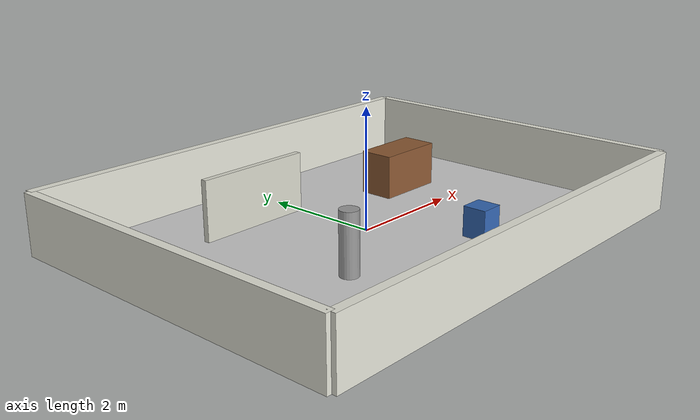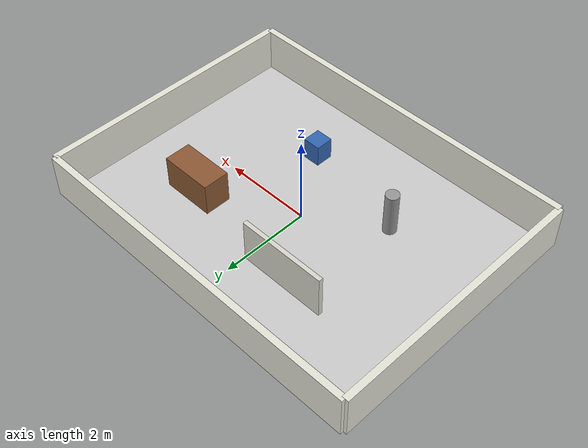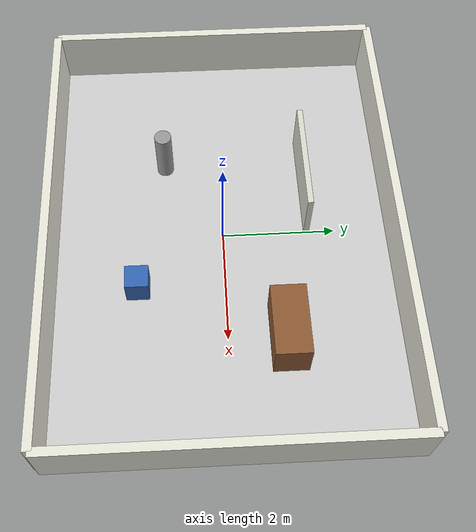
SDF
<?xml version="1.0"?>
<sdf version="1.6">
  <world name="johnny5_world">

    <!-- Physics engine tuned for balance robot dynamics -->
    <physics type="ode">
      <max_step_size>0.001</max_step_size>
      <real_time_factor>1.0</real_time_factor>
      <real_time_update_rate>1000</real_time_update_rate>
      <ode>
        <solver>
          <type>quick</type>
          <iters>150</iters>
          <sor>1.4</sor>
        </solver>
        <constraints>
          <cfm>0.00001</cfm>
          <erp>0.2</erp>
        </constraints>
      </ode>
    </physics>

    <!-- Lighting -->
    <include>
      <uri>model://sun</uri>
    </include>

    <!-- Ground plane -->
    <include>
      <uri>model://ground_plane</uri>
    </include>

    <!-- ==================== Indoor test environment ==================== -->
    <!-- A simple room with walls for SLAM and navigation testing.        -->
    <!-- ~8m x 6m room with a couple of interior obstacles.               -->

    <!-- Floor (visual only, ground_plane handles collision) -->
    <model name="floor">
      <static>true</static>
      <link name="link">
        <visual name="visual">
          <geometry>
            <plane><normal>0 0 1</normal><size>8 6</size></plane>
          </geometry>
          <material>
            <ambient>0.8 0.8 0.8 1</ambient>
            <diffuse>0.8 0.8 0.8 1</diffuse>
          </material>
        </visual>
      </link>
      <pose>0 0 0.001 0 0 0</pose>
    </model>

    <!-- North wall -->
    <model name="wall_north">
      <static>true</static>
      <link name="link">
        <collision name="collision">
          <geometry><box><size>8 0.15 1.0</size></box></geometry>
        </collision>
        <visual name="visual">
          <geometry><box><size>8 0.15 1.0</size></box></geometry>
          <material>
            <ambient>0.9 0.9 0.85 1</ambient>
            <diffuse>0.9 0.9 0.85 1</diffuse>
          </material>
        </visual>
      </link>
      <pose>0 3.0 0.5 0 0 0</pose>
    </model>

    <!-- South wall -->
    <model name="wall_south">
      <static>true</static>
      <link name="link">
        <collision name="collision">
          <geometry><box><size>8 0.15 1.0</size></box></geometry>
        </collision>
        <visual name="visual">
          <geometry><box><size>8 0.15 1.0</size></box></geometry>
          <material>
            <ambient>0.9 0.9 0.85 1</ambient>
            <diffuse>0.9 0.9 0.85 1</diffuse>
          </material>
        </visual>
      </link>
      <pose>0 -3.0 0.5 0 0 0</pose>
    </model>

    <!-- East wall -->
    <model name="wall_east">
      <static>true</static>
      <link name="link">
        <collision name="collision">
          <geometry><box><size>0.15 6 1.0</size></box></geometry>
        </collision>
        <visual name="visual">
          <geometry><box><size>0.15 6 1.0</size></box></geometry>
          <material>
            <ambient>0.9 0.9 0.85 1</ambient>
            <diffuse>0.9 0.9 0.85 1</diffuse>
          </material>
        </visual>
      </link>
      <pose>4.0 0 0.5 0 0 0</pose>
    </model>

    <!-- West wall -->
    <model name="wall_west">
      <static>true</static>
      <link name="link">
        <collision name="collision">
          <geometry><box><size>0.15 6 1.0</size></box></geometry>
        </collision>
        <visual name="visual">
          <geometry><box><size>0.15 6 1.0</size></box></geometry>
          <material>
            <ambient>0.9 0.9 0.85 1</ambient>
            <diffuse>0.9 0.9 0.85 1</diffuse>
          </material>
        </visual>
      </link>
      <pose>-4.0 0 0.5 0 0 0</pose>
    </model>

    <!-- Obstacle: table -->
    <model name="table">
      <static>true</static>
      <link name="link">
        <collision name="collision">
          <geometry><box><size>1.2 0.6 0.75</size></box></geometry>
        </collision>
        <visual name="visual">
          <geometry><box><size>1.2 0.6 0.75</size></box></geometry>
          <material>
            <ambient>0.55 0.35 0.2 1</ambient>
            <diffuse>0.55 0.35 0.2 1</diffuse>
          </material>
        </visual>
      </link>
      <pose>2.0 1.0 0.375 0 0 0</pose>
    </model>

    <!-- Obstacle: column -->
    <model name="column">
      <static>true</static>
      <link name="link">
        <collision name="collision">
          <geometry><cylinder><radius>0.15</radius><length>1.0</length></cylinder></geometry>
        </collision>
        <visual name="visual">
          <geometry><cylinder><radius>0.15</radius><length>1.0</length></cylinder></geometry>
          <material>
            <ambient>0.6 0.6 0.6 1</ambient>
            <diffuse>0.6 0.6 0.6 1</diffuse>
          </material>
        </visual>
      </link>
      <pose>-1.5 -1.0 0.5 0 0 0</pose>
    </model>

    <!-- Obstacle: box (movable-sized but static for testing) -->
    <model name="box_obstacle">
      <static>true</static>
      <link name="link">
        <collision name="collision">
          <geometry><box><size>0.4 0.4 0.5</size></box></geometry>
        </collision>
        <visual name="visual">
          <geometry><box><size>0.4 0.4 0.5</size></box></geometry>
          <material>
            <ambient>0.2 0.4 0.7 1</ambient>
            <diffuse>0.2 0.4 0.7 1</diffuse>
          </material>
        </visual>
      </link>
      <pose>1.0 -1.5 0.25 0 0 0</pose>
    </model>

    <!-- Interior wall / partition -->
    <model name="partition">
      <static>true</static>
      <link name="link">
        <collision name="collision">
          <geometry><box><size>2.0 0.1 1.0</size></box></geometry>
        </collision>
        <visual name="visual">
          <geometry><box><size>2.0 0.1 1.0</size></box></geometry>
          <material>
            <ambient>0.85 0.85 0.8 1</ambient>
            <diffuse>0.85 0.85 0.8 1</diffuse>
          </material>
        </visual>
      </link>
      <pose>-1.0 1.5 0.5 0 0 0</pose>
    </model>

  </world>
</sdf>
